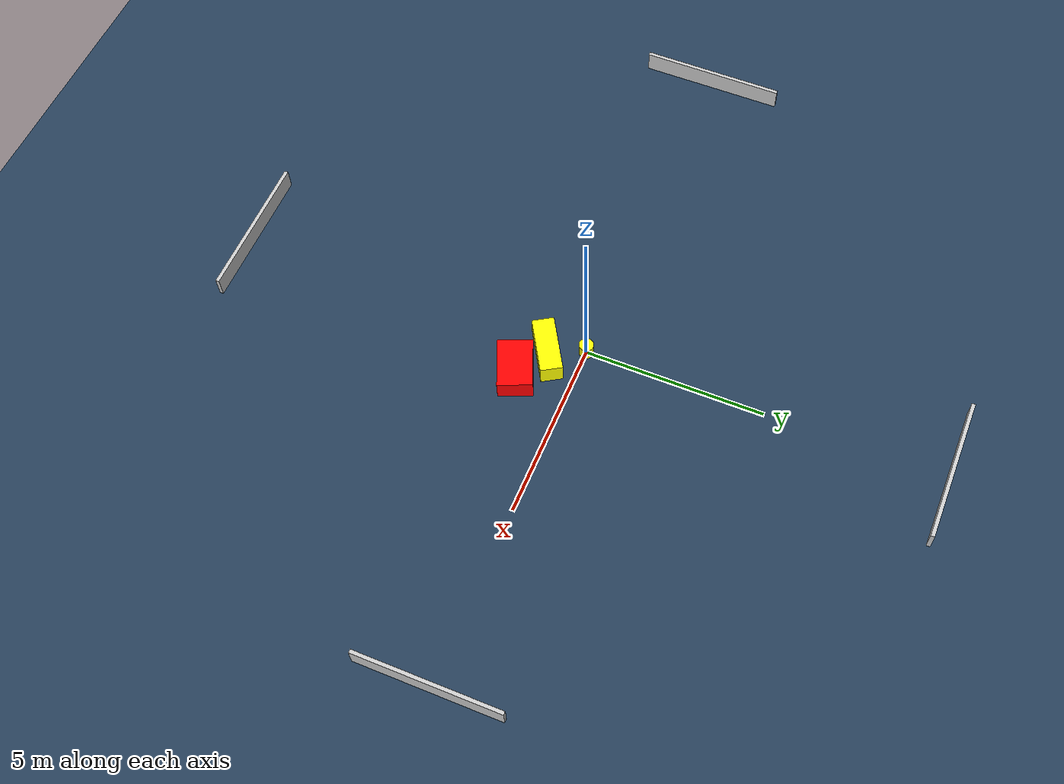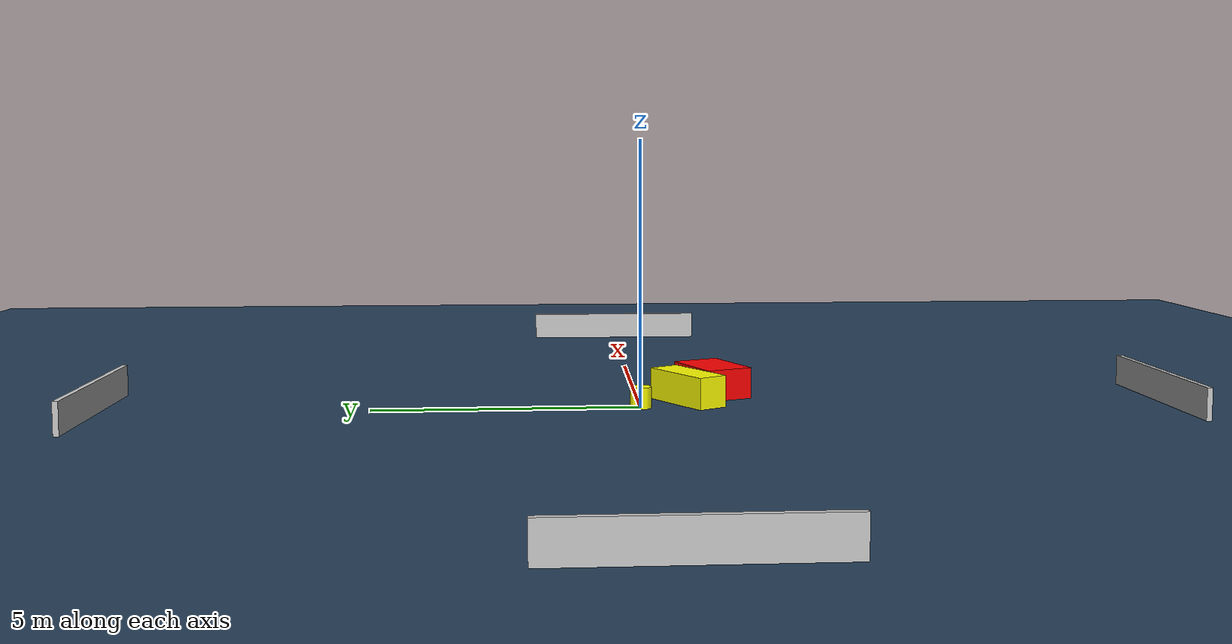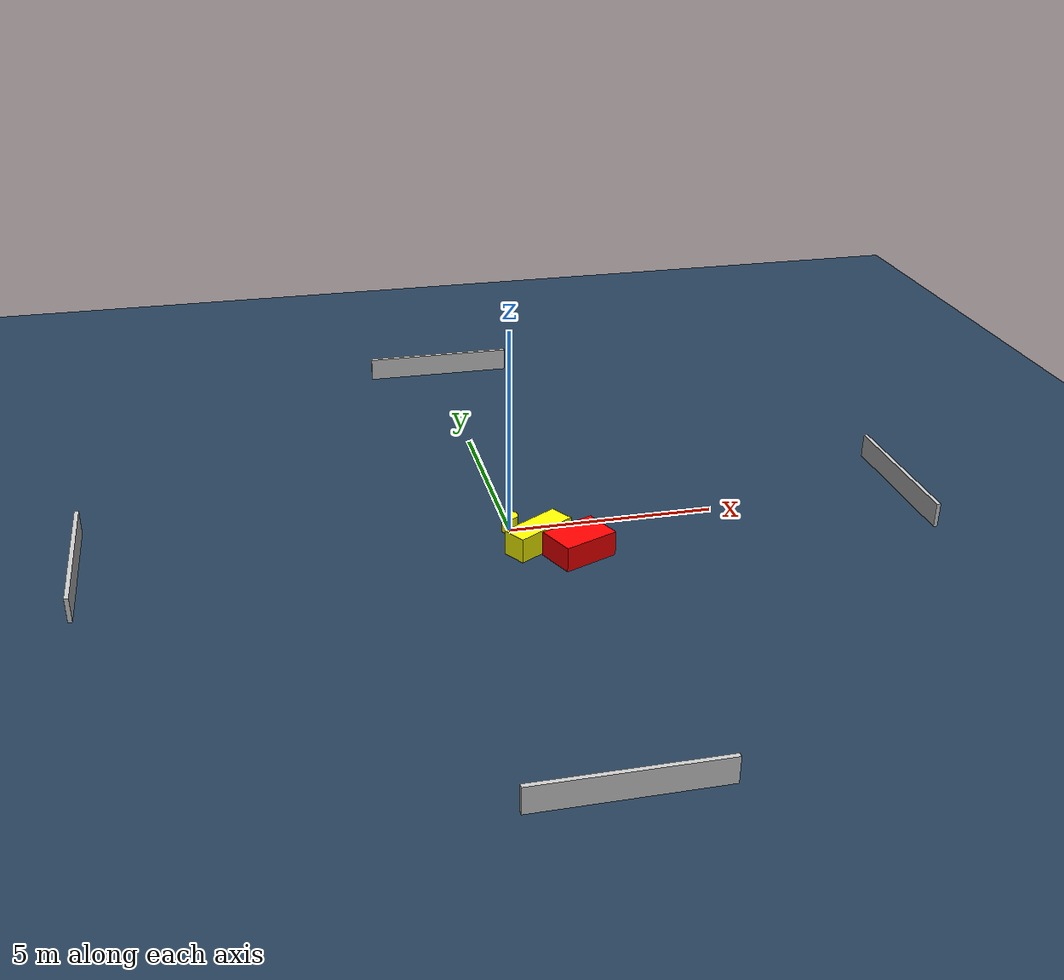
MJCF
<?xml version="1.0" ?>
<mujoco model="generated_environment">
  <option timestep="0.01" integrator="RK4" cone="elliptic"/>
  <default>
    <geom density="1"/>
  </default>
  <asset>
    <texture builtin="gradient" height="3072" name="skybox" rgb1="0.3 0.5 0.7" rgb2="0 0 0" type="skybox" width="512"/>
    <texture builtin="checker" height="300" name="groundplane" rgb1="0.2 0.3 0.4" rgb2="0.1 0.2 0.3" type="2d" width="300"/>
    <material name="groundplane" reflectance="0.2" texrepeat="5 5" texture="groundplane"/>
  </asset>
  <worldbody>
    <light dir="0 0 -1" directional="true" pos="0 0 1.5"/>
    <geom condim="3" friction="0.5 0.005 0.001" material="groundplane" name="floor" pos="0 0 0" size="0 0 0.05" type="plane"/>
    <body name="walls">
      <geom name="wall_1" condim="4" pos="-10.0 0.0 0.3" rgba="0.800000011920929 0.800000011920929 0.800000011920929 1.0" size="0.05 2.0 0.3" type="box"/>
      <geom name="wall_2" condim="4" pos="10.0 0.0 0.3" rgba="0.800000011920929 0.800000011920929 0.800000011920929 1.0" size="0.05 2.0 0.3" type="box"/>
      <geom name="wall_3" condim="4" pos="0.0 -10.0 0.3" rgba="0.800000011920929 0.800000011920929 0.800000011920929 1.0" size="2.0 0.05 0.3" type="box"/>
      <geom name="wall_4" condim="4" pos="0.0 10.0 0.3" rgba="0.800000011920929 0.800000011920929 0.800000011920929 1.0" size="2.0 0.05 0.3" type="box"/>
    </body>
    <body name="robot">
      <joint name="joint_x" type="slide" pos="0 0 0" axis="1 0 0"/>
      <joint name="joint_y" type="slide" pos="0 0 0" axis="0 1 0"/>
      <geom name="robot" type="cylinder" pos="0.0 0.0 0.2" size="0.2 0.2 0.0" mass="5.0" friction="1.0 0.005 0.0001" condim="4" rgba="1.0 1.0 0.0 1.0"/>
    </body>
    <body name="obstacle_1_movable">
      <geom name="obstacle_1_movable" condim="4" pos="0.46956687550074344 -0.9315691246033883 0.3" euler="0 0 31.304686415609314" friction="0.0 0.005 0.001" rgba="1.0 1.0 0.0 1.0" size="0.7804536983577126 0.3033175274623393 0.3" type="box" mass="0.1"/>
      <joint type="free"/>
    </body>
    <body name="obstacle_2_static">
      <geom name="obstacle_2_static" condim="4" pos="1.3052766516029723 -1.4997716815436495 0.3" euler="0 0 202.85961133971375" friction="0.0 0.005 0.001" rgba="1.0 0.0 0.0 1.0" size="0.6908055260501627 0.47475982555875984 0.3" type="box"/>
    </body>
  </worldbody>
  <actuator>
    <motor name="actuator_x" joint="joint_x" gear="1" ctrlrange="-1 1"/>
    <motor name="actuator_y" joint="joint_y" gear="1" ctrlrange="-1 1"/>
  </actuator>
</mujoco>
